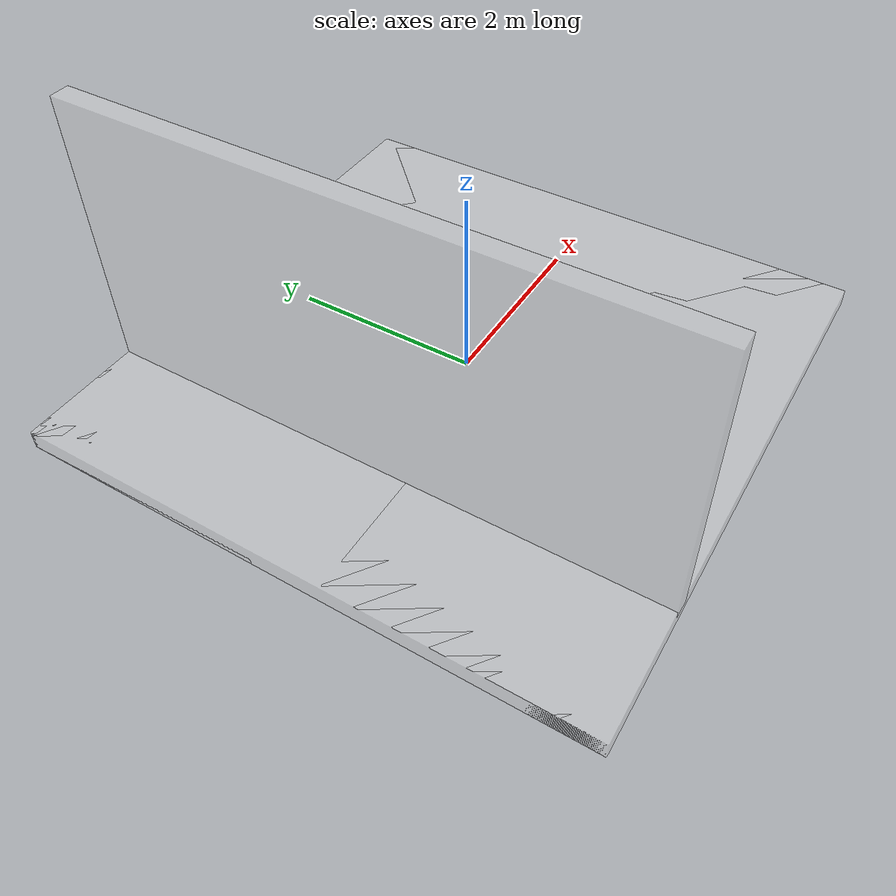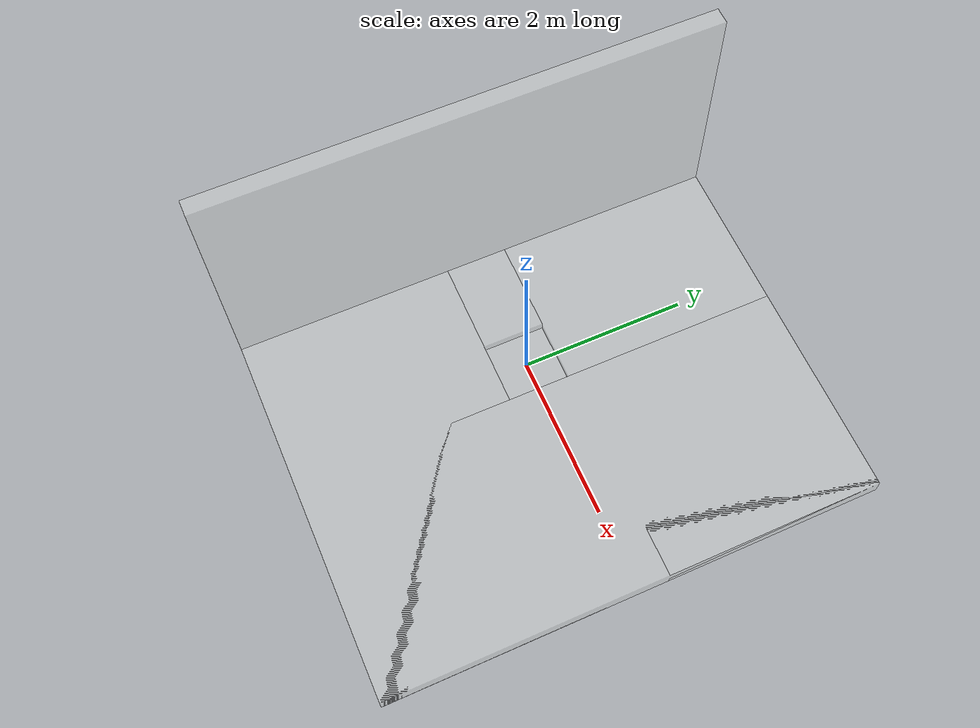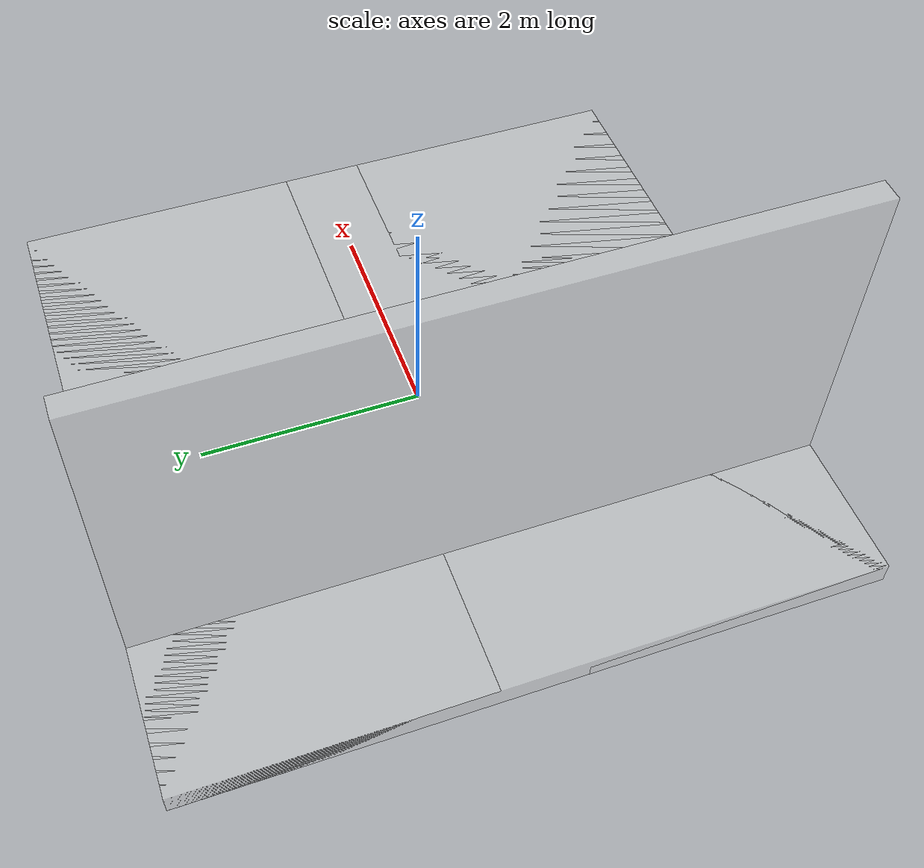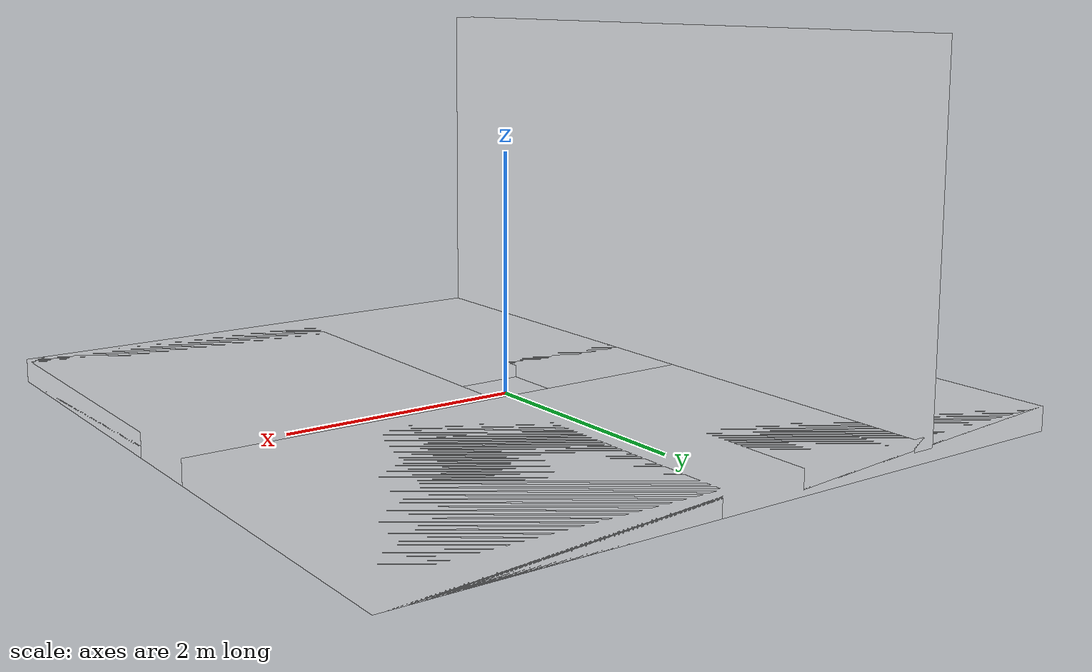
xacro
<?xml version="1.0"?>
<robot  xmlns:xacro="http://www.ros.org/wiki/xacro">

  <xacro:property name="central_floor_size_x" value="0.75" />
  <xacro:property name="central_floor_size_y" value="0.75" />
  <xacro:property name="central_floor_size_z" value="0.10" />

  <xacro:property name="lateral_floor_size_x" value="6" />
  <xacro:property name="lateral_floor_size_y" value="2.625" />
  <xacro:property name="lateral_floor_size_z" value="0.20" />

  <xacro:property name="back_wall_size_x" value="6" />
  <xacro:property name="back_wall_size_y" value="0.2" />
  <xacro:property name="back_wall_size_z" value="3" />

  <link name="central_floor">
    <visual>
      <origin xyz="0 0 ${-0.5*central_floor_size_z}" rpy="0 0 0" />
      <geometry>
        <box size="${central_floor_size_x} ${central_floor_size_y} ${central_floor_size_z}" />
      </geometry>
      <material name="White">
        <color rgba="1 1 1 0.1"/>
      </material>
    </visual>
    <collision>
      <origin xyz="0 0 ${-0.5*central_floor_size_z}" rpy="0 0 0" />
      <geometry>
        <box size="${central_floor_size_x} ${central_floor_size_y} ${central_floor_size_z}" />
      </geometry>
      <material name="White">
        <color rgba="1 1 1 0.1"/>
      </material>
    </collision>
  </link>

  <link name="right_floor">
    <visual>
      <origin xyz="0 0.1875 0" rpy="0 0 0" />
      <geometry>
        <box size="${lateral_floor_size_x} ${lateral_floor_size_y} ${lateral_floor_size_z}" />
      </geometry>
      <material name="White">
        <color rgba="1 1 1 0.1"/>
      </material>
    </visual>
    <collision>
      <origin xyz="0 0.1875 0" rpy="0 0 0" />
      <geometry>
        <box size="${lateral_floor_size_x} ${lateral_floor_size_y} ${lateral_floor_size_z}" />
      </geometry>
      <material name="White">
        <color rgba="1 1 1 0.1"/>
      </material>
    </collision>
  </link>

  <link name="left_floor">
    <visual>
      <origin xyz="0 -0.1875 0" rpy="0 0 0" />
      <geometry>
        <box size="${lateral_floor_size_x} ${lateral_floor_size_y} ${lateral_floor_size_z}" />
      </geometry>
      <material name="White">
        <color rgba="1 1 1 0.1"/>
      </material>
    </visual>
    <collision>
      <origin xyz="0 -0.1875 0" rpy="0 0 0" />
      <geometry>
        <box size="${lateral_floor_size_x} ${lateral_floor_size_y} ${lateral_floor_size_z}" />
      </geometry>
      <material name="White">
        <color rgba="1 1 1 0.1"/>
      </material>
    </collision>
  </link>

  <link name="front_floor">
    <visual>
      <origin xyz="0 -0.1875 0" rpy="0 0 0" />
      <geometry>
        <box size="${lateral_floor_size_x} ${lateral_floor_size_y} ${lateral_floor_size_z}" />
      </geometry>
      <material name="White">
        <color rgba="1 1 1 0.1"/>
      </material>
    </visual>
    <collision>
      <origin xyz="0 -0.1875 0" rpy="0 0 0" />
      <geometry>
        <box size="${lateral_floor_size_x} ${lateral_floor_size_y} ${lateral_floor_size_z}" />
      </geometry>
      <material name="White">
        <color rgba="1 1 1 0.1"/>
      </material>
    </collision>
  </link>

  <link name="back_floor">
    <visual>
      <origin xyz="0 -0.1875 0" rpy="0 0 0" />
      <geometry>
        <box size="${lateral_floor_size_x} ${lateral_floor_size_y} ${lateral_floor_size_z}" />
      </geometry>
      <material name="White">
        <color rgba="1 1 1 0.1"/>
      </material>
    </visual>
    <collision>
      <origin xyz="0 -0.1875 0" rpy="0 0 0" />
      <geometry>
        <box size="${lateral_floor_size_x} ${lateral_floor_size_y} ${lateral_floor_size_z}" />
      </geometry>
      <material name="White">
        <color rgba="1 1 1 0.1"/>
      </material>
    </collision>
  </link>

  <link name="back_wall">
    <visual>
      <origin xyz="0 -0.1 1.5" rpy="0 0 0" />
      <geometry>
        <box size="${back_wall_size_x} ${back_wall_size_y} ${back_wall_size_z}" />
      </geometry>
      <material name="White">
        <color rgba="1 1 1 0.1"/>
      </material>
    </visual>
    <collision>
      <origin xyz="0 -0.1 1.5" rpy="0 0 0" />
      <geometry>
        <box size="${back_wall_size_x} ${back_wall_size_y} ${back_wall_size_z}" />
      </geometry>
      <material name="White">
        <color rgba="1 1 1 0.1"/>
      </material>
    </collision>
  </link>

  <joint name="central_floor_to_right" type="fixed">
      <parent link="central_floor"/>
      <child link="right_floor"/>
      <origin
        xyz="0 1.5 0"
        rpy="0 0 0"/>
  </joint>

  <joint name="central_floor_to_left" type="fixed">
      <parent link="central_floor"/>
      <child link="left_floor"/>
      <origin
        xyz="0 -1.5 0"
        rpy="0 0 0"/>
  </joint>

  <joint name="central_floor_to_front" type="fixed">
      <parent link="central_floor"/>
      <child link="front_floor"/>
      <origin
        xyz="1.5 0 0"
        rpy="0 0 1.57079632679"/>
  </joint>

  <joint name="central_floor_to_back_floor" type="fixed">
      <parent link="central_floor"/>
      <child link="back_floor"/>
      <origin
        xyz="-1.5 0 0"
        rpy="0 0 -1.57079632679"/>
  </joint>

  <joint name="central_floor_to_back_wall" type="fixed">
      <parent link="central_floor"/>
      <child link="back_wall"/>
      <origin
        xyz="-1.5 0 0"
        rpy="0 0 -1.57079632679"/>
  </joint>

</robot>
